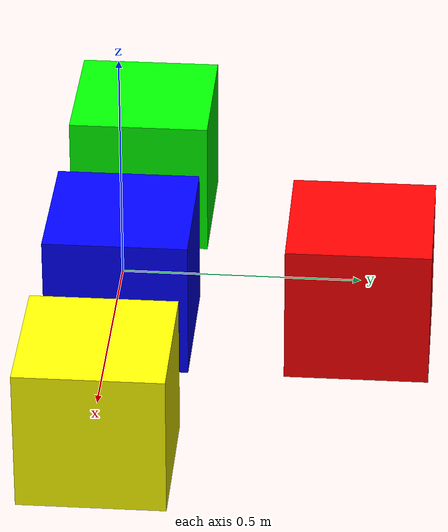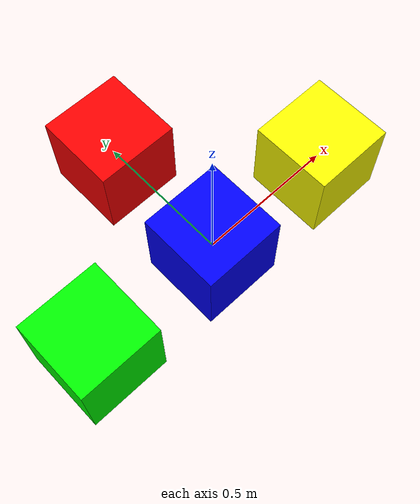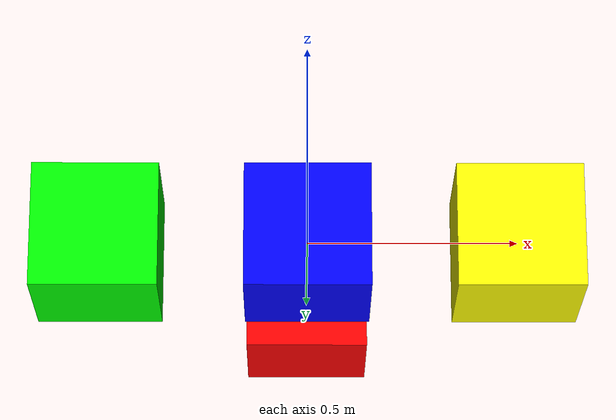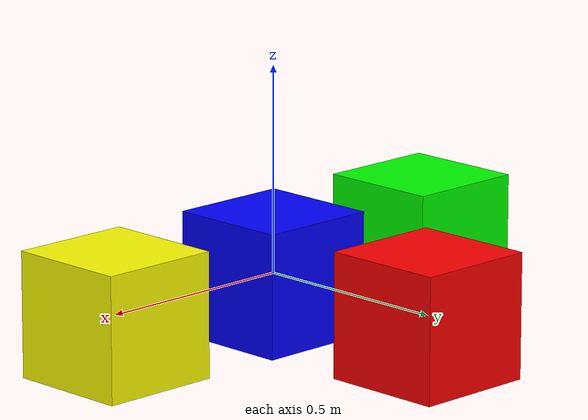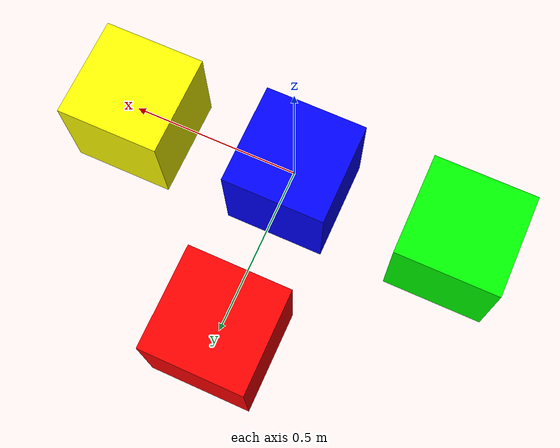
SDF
<?xml version="1.0"?>
<sdf version="1.8">
  <model name="obstacles">

    <!-- Blue Box (Center) -->
    <link name="blue_box">
      <pose>0 0 0 0 0 0</pose>
      <inertial>
        <mass>1.0</mass>
        <inertia>
          <ixx>0.015</ixx>
          <iyy>0.015</iyy>
          <izz>0.015</izz>
        </inertia>
      </inertial>

      <visual name="visual">
        <geometry>
          <box>
            <size>0.3 0.3 0.3</size>
          </box>
        </geometry>
        <material>
          <ambient>0 0 1 1</ambient>
          <diffuse>0 0 1 1</diffuse>
        </material>
      </visual>

      <collision name="collision">
        <geometry>
          <box>
            <size>0.3 0.3 0.3</size>
          </box>
        </geometry>
      </collision>
    </link>

    <!-- Yellow Box -->
    <link name="yellow_box">
      <pose>0.5 0 0 0 0 0</pose>
      <inertial>
        <mass>1.0</mass>
        <inertia>
          <ixx>0.015</ixx>
          <iyy>0.015</iyy>
          <izz>0.015</izz>
        </inertia>
      </inertial>

      <visual name="visual">
        <geometry>
          <box>
            <size>0.3 0.3 0.3</size>
          </box>
        </geometry>
        <material>
          <ambient>1 1 0 1</ambient>
          <diffuse>1 1 0 1</diffuse>
        </material>
      </visual>

      <collision name="collision">
        <geometry>
          <box>
            <size>0.3 0.3 0.3</size>
          </box>
        </geometry>
      </collision>
    </link>

    <!-- Red Box -->
    <link name="red_box">
      <pose>0 0.5 0 0 0 0</pose>
      <inertial>
        <mass>1.0</mass>
        <inertia>
          <ixx>0.015</ixx>
          <iyy>0.015</iyy>
          <izz>0.015</izz>
        </inertia>
      </inertial>

      <visual name="visual">
        <geometry>
          <box>
            <size>0.3 0.3 0.3</size>
          </box>
        </geometry>
        <material>
          <ambient>1 0 0 1</ambient>
          <diffuse>1 0 0 1</diffuse>
        </material>
      </visual>

      <collision name="collision">
        <geometry>
          <box>
            <size>0.3 0.3 0.3</size>
          </box>
        </geometry>
      </collision>
    </link>

    <!-- Green Box -->
    <link name="green_box">
      <pose>-0.5 0 0 0 0 0</pose>
      <inertial>
        <mass>1.0</mass>
        <inertia>
          <ixx>0.015</ixx>
          <iyy>0.015</iyy>
          <izz>0.015</izz>
        </inertia>
      </inertial>

      <visual name="visual">
        <geometry>
          <box>
            <size>0.3 0.3 0.3</size>
          </box>
        </geometry>
        <material>
          <ambient>0 1 0 1</ambient>
          <diffuse>0 1 0 1</diffuse>
        </material>
      </visual>

      <collision name="collision">
        <geometry>
          <box>
            <size>0.3 0.3 0.3</size>
          </box>
        </geometry>
      </collision>
    </link>

  </model>
</sdf>
